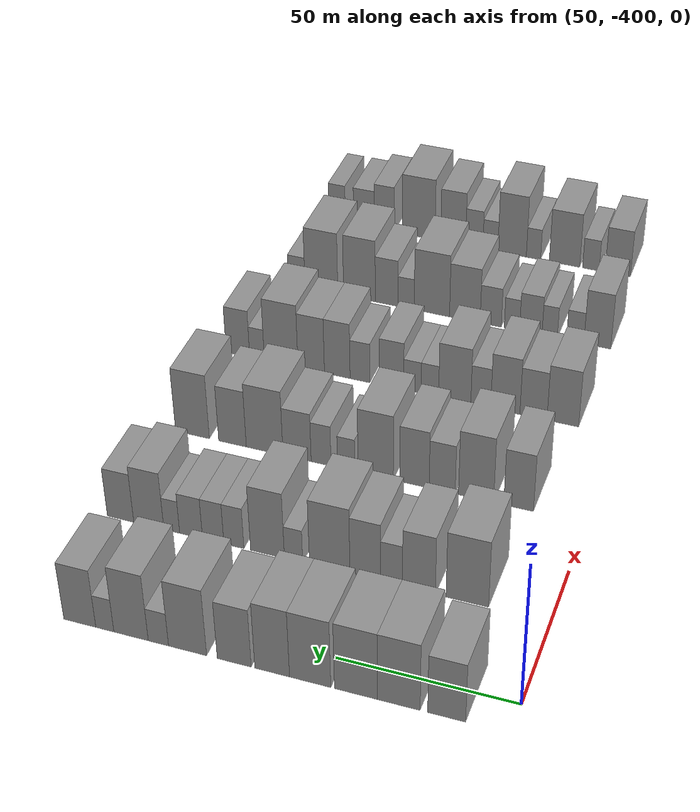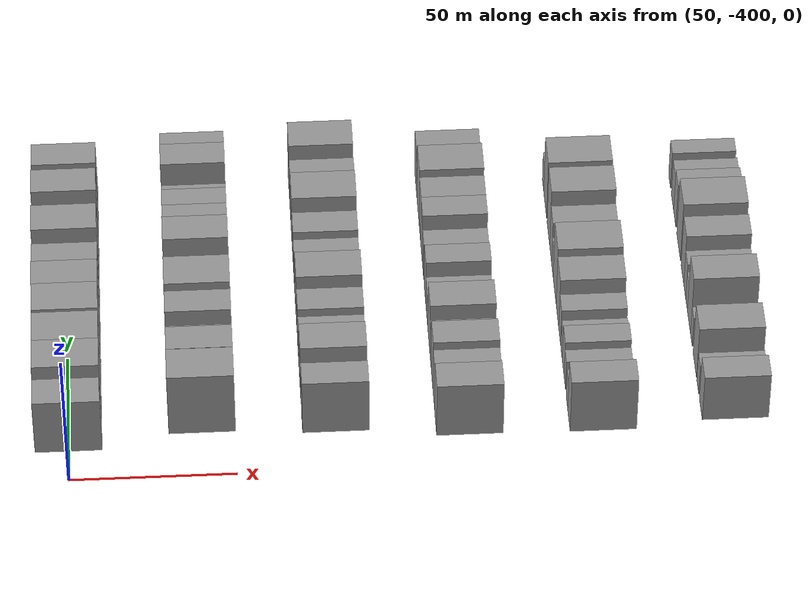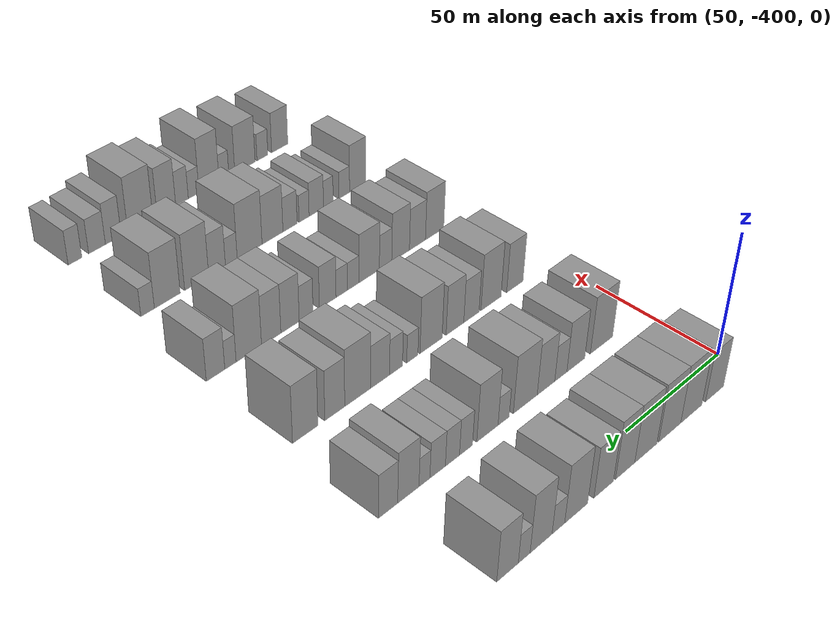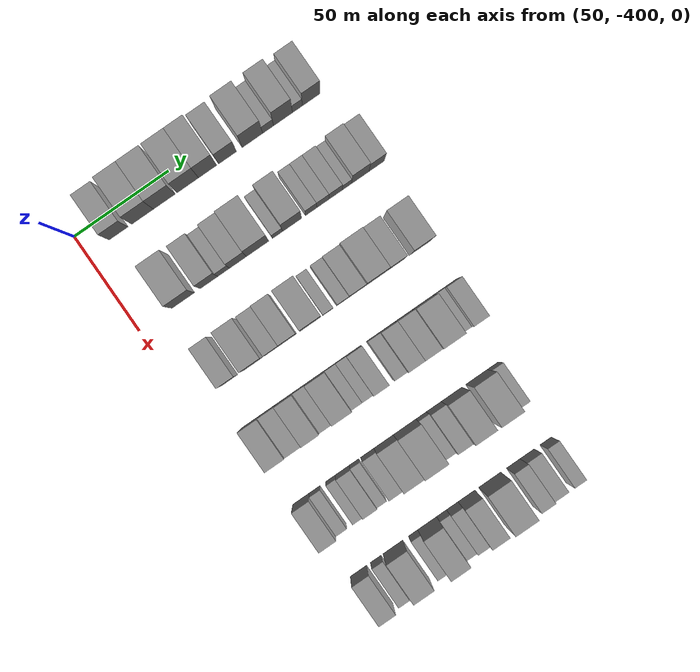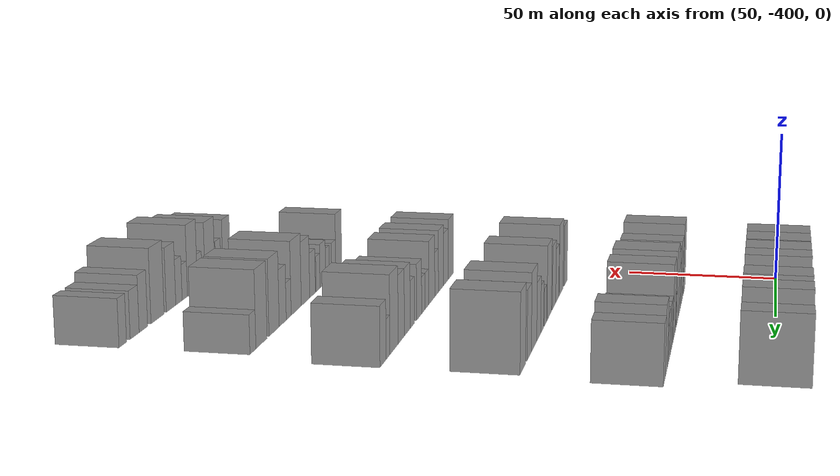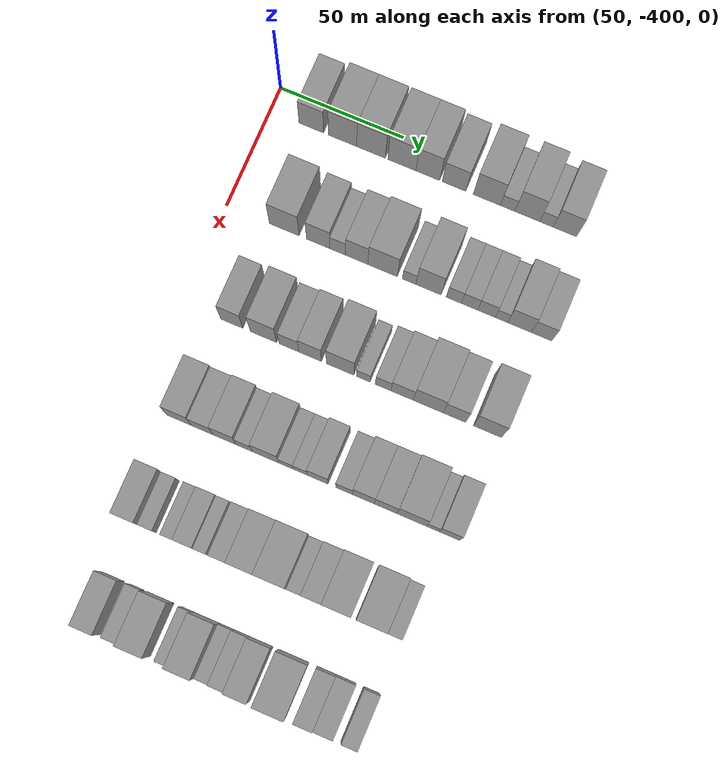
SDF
<sdf version="1.6">
 <world name="default">
  <model name="building_26">
   <static>1</static>
   <pose>50.0000 -383.2100 0 0.000000 0.000000 0.000000</pose>
   <link name="link">
    <pose>0 0 10.50 0 0 0</pose>
    <collision name="collision"><geometry><box><size>20.0000 10.0023 21.0000</size></box></geometry></collision>
    <visual name="visual">
     <cast_shadows>0</cast_shadows>
     <geometry><box><size>20.0000 10.0023 21.0000</size></box></geometry>
     <material>
      <script>
       <uri>model://grey_wall/materials/scripts</uri>
       <uri>model://grey_wall/materials/textures</uri>
       <name>vrc/grey_wall</name>
      </script>
     </material>
    </visual>
   </link>
  </model>
  <model name="building_27">
   <static>1</static>
   <pose>50.0000 -370.5010 0 0.000000 0.000000 0.000000</pose>
   <link name="link">
    <pose>0 0 12.00 0 0 0</pose>
    <collision name="collision"><geometry><box><size>20.0000 11.4157 24.0000</size></box></geometry></collision>
    <visual name="visual">
     <cast_shadows>0</cast_shadows>
     <geometry><box><size>20.0000 11.4157 24.0000</size></box></geometry>
     <material>
      <script>
       <uri>model://grey_wall/materials/scripts</uri>
       <uri>model://grey_wall/materials/textures</uri>
       <name>vrc/grey_wall</name>
      </script>
     </material>
    </visual>
   </link>
  </model>
  <model name="building_28">
   <static>1</static>
   <pose>50.0000 -358.9997 0 0.000000 0.000000 0.000000</pose>
   <link name="link">
    <pose>0 0 12.00 0 0 0</pose>
    <collision name="collision"><geometry><box><size>20.0000 11.5869 24.0000</size></box></geometry></collision>
    <visual name="visual">
     <cast_shadows>0</cast_shadows>
     <geometry><box><size>20.0000 11.5869 24.0000</size></box></geometry>
     <material>
      <script>
       <uri>model://grey_wall/materials/scripts</uri>
       <uri>model://grey_wall/materials/textures</uri>
       <name>vrc/grey_wall</name>
      </script>
     </material>
    </visual>
   </link>
  </model>
  <model name="building_29">
   <static>1</static>
   <pose>50.0000 -346.5559 0 0.000000 0.000000 0.000000</pose>
   <link name="link">
    <pose>0 0 12.00 0 0 0</pose>
    <collision name="collision"><geometry><box><size>20.0000 11.3006 24.0000</size></box></geometry></collision>
    <visual name="visual">
     <cast_shadows>0</cast_shadows>
     <geometry><box><size>20.0000 11.3006 24.0000</size></box></geometry>
     <material>
      <script>
       <uri>model://grey_wall/materials/scripts</uri>
       <uri>model://grey_wall/materials/textures</uri>
       <name>vrc/grey_wall</name>
      </script>
     </material>
    </visual>
   </link>
  </model>
  <model name="building_30">
   <static>1</static>
   <pose>50.0000 -336.1024 0 0.000000 0.000000 0.000000</pose>
   <link name="link">
    <pose>0 0 12.00 0 0 0</pose>
    <collision name="collision"><geometry><box><size>20.0000 9.6063 24.0000</size></box></geometry></collision>
    <visual name="visual">
     <cast_shadows>0</cast_shadows>
     <geometry><box><size>20.0000 9.6063 24.0000</size></box></geometry>
     <material>
      <script>
       <uri>model://grey_wall/materials/scripts</uri>
       <uri>model://grey_wall/materials/textures</uri>
       <name>vrc/grey_wall</name>
      </script>
     </material>
    </visual>
   </link>
  </model>
  <model name="building_31">
   <static>1</static>
   <pose>50.0000 -325.5463 0 0.000000 0.000000 0.000000</pose>
   <link name="link">
    <pose>0 0 10.50 0 0 0</pose>
    <collision name="collision"><geometry><box><size>20.0000 9.5060 21.0000</size></box></geometry></collision>
    <visual name="visual">
     <cast_shadows>0</cast_shadows>
     <geometry><box><size>20.0000 9.5060 21.0000</size></box></geometry>
     <material>
      <script>
       <uri>model://grey_wall/materials/scripts</uri>
       <uri>model://grey_wall/materials/textures</uri>
       <name>vrc/grey_wall</name>
      </script>
     </material>
    </visual>
   </link>
  </model>
  <model name="building_32">
   <static>1</static>
   <pose>50.0000 -312.3909 0 0.000000 0.000000 0.000000</pose>
   <link name="link">
    <pose>0 0 12.00 0 0 0</pose>
    <collision name="collision"><geometry><box><size>20.0000 10.8048 24.0000</size></box></geometry></collision>
    <visual name="visual">
     <cast_shadows>0</cast_shadows>
     <geometry><box><size>20.0000 10.8048 24.0000</size></box></geometry>
     <material>
      <script>
       <uri>model://grey_wall/materials/scripts</uri>
       <uri>model://grey_wall/materials/textures</uri>
       <name>vrc/grey_wall</name>
      </script>
     </material>
    </visual>
   </link>
  </model>
  <model name="building_33">
   <static>1</static>
   <pose>50.0000 -304.0890 0 0.000000 0.000000 0.000000</pose>
   <link name="link">
    <pose>0 0 6.00 0 0 0</pose>
    <collision name="collision"><geometry><box><size>20.0000 5.7989 12.0000</size></box></geometry></collision>
    <visual name="visual">
     <cast_shadows>0</cast_shadows>
     <geometry><box><size>20.0000 5.7989 12.0000</size></box></geometry>
     <material>
      <script>
       <uri>model://grey_wall/materials/scripts</uri>
       <uri>model://grey_wall/materials/textures</uri>
       <name>vrc/grey_wall</name>
      </script>
     </material>
    </visual>
   </link>
  </model>
  <model name="building_34">
   <static>1</static>
   <pose>50.0000 -296.2287 0 0.000000 0.000000 0.000000</pose>
   <link name="link">
    <pose>0 0 12.00 0 0 0</pose>
    <collision name="collision"><geometry><box><size>20.0000 9.9216 24.0000</size></box></geometry></collision>
    <visual name="visual">
     <cast_shadows>0</cast_shadows>
     <geometry><box><size>20.0000 9.9216 24.0000</size></box></geometry>
     <material>
      <script>
       <uri>model://grey_wall/materials/scripts</uri>
       <uri>model://grey_wall/materials/textures</uri>
       <name>vrc/grey_wall</name>
      </script>
     </material>
    </visual>
   </link>
  </model>
  <model name="building_35">
   <static>1</static>
   <pose>50.0000 -288.6441 0 0.000000 0.000000 0.000000</pose>
   <link name="link">
    <pose>0 0 6.00 0 0 0</pose>
    <collision name="collision"><geometry><box><size>20.0000 5.2477 12.0000</size></box></geometry></collision>
    <visual name="visual">
     <cast_shadows>0</cast_shadows>
     <geometry><box><size>20.0000 5.2477 12.0000</size></box></geometry>
     <material>
      <script>
       <uri>model://grey_wall/materials/scripts</uri>
       <uri>model://grey_wall/materials/textures</uri>
       <name>vrc/grey_wall</name>
      </script>
     </material>
    </visual>
   </link>
  </model>
  <model name="building_36">
   <static>1</static>
   <pose>50.0000 -281.3469 0 0.000000 0.000000 0.000000</pose>
   <link name="link">
    <pose>0 0 10.50 0 0 0</pose>
    <collision name="collision"><geometry><box><size>20.0000 9.3467 21.0000</size></box></geometry></collision>
    <visual name="visual">
     <cast_shadows>0</cast_shadows>
     <geometry><box><size>20.0000 9.3467 21.0000</size></box></geometry>
     <material>
      <script>
       <uri>model://grey_wall/materials/scripts</uri>
       <uri>model://grey_wall/materials/textures</uri>
       <name>vrc/grey_wall</name>
      </script>
     </material>
    </visual>
   </link>
  </model>
  <model name="building_163">
   <static>1</static>
   <pose>90.0000 -376.7225 0 0.000000 0.000000 0.000000</pose>
   <link name="link">
    <pose>0 0 12.00 0 0 0</pose>
    <collision name="collision"><geometry><box><size>20.0000 11.9262 24.0000</size></box></geometry></collision>
    <visual name="visual">
     <cast_shadows>0</cast_shadows>
     <geometry><box><size>20.0000 11.9262 24.0000</size></box></geometry>
     <material>
      <script>
       <uri>model://grey_wall/materials/scripts</uri>
       <uri>model://grey_wall/materials/textures</uri>
       <name>vrc/grey_wall</name>
      </script>
     </material>
    </visual>
   </link>
  </model>
  <model name="building_164">
   <static>1</static>
   <pose>90.0000 -363.0831 0 0.000000 0.000000 0.000000</pose>
   <link name="link">
    <pose>0 0 10.50 0 0 0</pose>
    <collision name="collision"><geometry><box><size>20.0000 9.3526 21.0000</size></box></geometry></collision>
    <visual name="visual">
     <cast_shadows>0</cast_shadows>
     <geometry><box><size>20.0000 9.3526 21.0000</size></box></geometry>
     <material>
      <script>
       <uri>model://grey_wall/materials/scripts</uri>
       <uri>model://grey_wall/materials/textures</uri>
       <name>vrc/grey_wall</name>
      </script>
     </material>
    </visual>
   </link>
  </model>
  <model name="building_165">
   <static>1</static>
   <pose>90.0000 -355.2886 0 0.000000 0.000000 0.000000</pose>
   <link name="link">
    <pose>0 0 7.50 0 0 0</pose>
    <collision name="collision"><geometry><box><size>20.0000 6.2364 15.0000</size></box></geometry></collision>
    <visual name="visual">
     <cast_shadows>0</cast_shadows>
     <geometry><box><size>20.0000 6.2364 15.0000</size></box></geometry>
     <material>
      <script>
       <uri>model://grey_wall/materials/scripts</uri>
       <uri>model://grey_wall/materials/textures</uri>
       <name>vrc/grey_wall</name>
      </script>
     </material>
    </visual>
   </link>
  </model>
  <model name="building_166">
   <static>1</static>
   <pose>90.0000 -347.7368 0 0.000000 0.000000 0.000000</pose>
   <link name="link">
    <pose>0 0 10.50 0 0 0</pose>
    <collision name="collision"><geometry><box><size>20.0000 8.8673 21.0000</size></box></geometry></collision>
    <visual name="visual">
     <cast_shadows>0</cast_shadows>
     <geometry><box><size>20.0000 8.8673 21.0000</size></box></geometry>
     <material>
      <script>
       <uri>model://grey_wall/materials/scripts</uri>
       <uri>model://grey_wall/materials/textures</uri>
       <name>vrc/grey_wall</name>
      </script>
     </material>
    </visual>
   </link>
  </model>
  <model name="building_167">
   <static>1</static>
   <pose>90.0000 -337.4164 0 0.000000 0.000000 0.000000</pose>
   <link name="link">
    <pose>0 0 12.00 0 0 0</pose>
    <collision name="collision"><geometry><box><size>20.0000 11.7734 24.0000</size></box></geometry></collision>
    <visual name="visual">
     <cast_shadows>0</cast_shadows>
     <geometry><box><size>20.0000 11.7734 24.0000</size></box></geometry>
     <material>
      <script>
       <uri>model://grey_wall/materials/scripts</uri>
       <uri>model://grey_wall/materials/textures</uri>
       <name>vrc/grey_wall</name>
      </script>
     </material>
    </visual>
   </link>
  </model>
  <model name="building_168">
   <static>1</static>
   <pose>90.0000 -326.8389 0 0.000000 0.000000 0.000000</pose>
   <link name="link">
    <pose>0 0 6.00 0 0 0</pose>
    <collision name="collision"><geometry><box><size>20.0000 5.3818 12.0000</size></box></geometry></collision>
    <visual name="visual">
     <cast_shadows>0</cast_shadows>
     <geometry><box><size>20.0000 5.3818 12.0000</size></box></geometry>
     <material>
      <script>
       <uri>model://grey_wall/materials/scripts</uri>
       <uri>model://grey_wall/materials/textures</uri>
       <name>vrc/grey_wall</name>
      </script>
     </material>
    </visual>
   </link>
  </model>
  <model name="building_169">
   <static>1</static>
   <pose>90.0000 -319.1315 0 0.000000 0.000000 0.000000</pose>
   <link name="link">
    <pose>0 0 12.00 0 0 0</pose>
    <collision name="collision"><geometry><box><size>20.0000 10.0330 24.0000</size></box></geometry></collision>
    <visual name="visual">
     <cast_shadows>0</cast_shadows>
     <geometry><box><size>20.0000 10.0330 24.0000</size></box></geometry>
     <material>
      <script>
       <uri>model://grey_wall/materials/scripts</uri>
       <uri>model://grey_wall/materials/textures</uri>
       <name>vrc/grey_wall</name>
      </script>
     </material>
    </visual>
   </link>
  </model>
  <model name="building_170">
   <static>1</static>
   <pose>90.0000 -309.1130 0 0.000000 0.000000 0.000000</pose>
   <link name="link">
    <pose>0 0 7.50 0 0 0</pose>
    <collision name="collision"><geometry><box><size>20.0000 6.0039 15.0000</size></box></geometry></collision>
    <visual name="visual">
     <cast_shadows>0</cast_shadows>
     <geometry><box><size>20.0000 6.0039 15.0000</size></box></geometry>
     <material>
      <script>
       <uri>model://grey_wall/materials/scripts</uri>
       <uri>model://grey_wall/materials/textures</uri>
       <name>vrc/grey_wall</name>
      </script>
     </material>
    </visual>
   </link>
  </model>
  <model name="building_171">
   <static>1</static>
   <pose>90.0000 -302.8953 0 0.000000 0.000000 0.000000</pose>
   <link name="link">
    <pose>0 0 7.50 0 0 0</pose>
    <collision name="collision"><geometry><box><size>20.0000 6.4315 15.0000</size></box></geometry></collision>
    <visual name="visual">
     <cast_shadows>0</cast_shadows>
     <geometry><box><size>20.0000 6.4315 15.0000</size></box></geometry>
     <material>
      <script>
       <uri>model://grey_wall/materials/scripts</uri>
       <uri>model://grey_wall/materials/textures</uri>
       <name>vrc/grey_wall</name>
      </script>
     </material>
    </visual>
   </link>
  </model>
  <model name="building_172">
   <static>1</static>
   <pose>90.0000 -296.2111 0 0.000000 0.000000 0.000000</pose>
   <link name="link">
    <pose>0 0 7.50 0 0 0</pose>
    <collision name="collision"><geometry><box><size>20.0000 6.9369 15.0000</size></box></geometry></collision>
    <visual name="visual">
     <cast_shadows>0</cast_shadows>
     <geometry><box><size>20.0000 6.9369 15.0000</size></box></geometry>
     <material>
      <script>
       <uri>model://grey_wall/materials/scripts</uri>
       <uri>model://grey_wall/materials/textures</uri>
       <name>vrc/grey_wall</name>
      </script>
     </material>
    </visual>
   </link>
  </model>
  <model name="building_173">
   <static>1</static>
   <pose>90.0000 -290.3276 0 0.000000 0.000000 0.000000</pose>
   <link name="link">
    <pose>0 0 6.00 0 0 0</pose>
    <collision name="collision"><geometry><box><size>20.0000 4.8303 12.0000</size></box></geometry></collision>
    <visual name="visual">
     <cast_shadows>0</cast_shadows>
     <geometry><box><size>20.0000 4.8303 12.0000</size></box></geometry>
     <material>
      <script>
       <uri>model://grey_wall/materials/scripts</uri>
       <uri>model://grey_wall/materials/textures</uri>
       <name>vrc/grey_wall</name>
      </script>
     </material>
    </visual>
   </link>
  </model>
  <model name="building_174">
   <static>1</static>
   <pose>90.0000 -283.2886 0 0.000000 0.000000 0.000000</pose>
   <link name="link">
    <pose>0 0 10.50 0 0 0</pose>
    <collision name="collision"><geometry><box><size>20.0000 9.2477 21.0000</size></box></geometry></collision>
    <visual name="visual">
     <cast_shadows>0</cast_shadows>
     <geometry><box><size>20.0000 9.2477 21.0000</size></box></geometry>
     <material>
      <script>
       <uri>model://grey_wall/materials/scripts</uri>
       <uri>model://grey_wall/materials/textures</uri>
       <name>vrc/grey_wall</name>
      </script>
     </material>
    </visual>
   </link>
  </model>
  <model name="building_175">
   <static>1</static>
   <pose>90.0000 -274.5964 0 0.000000 0.000000 0.000000</pose>
   <link name="link">
    <pose>0 0 9.00 0 0 0</pose>
    <collision name="collision"><geometry><box><size>20.0000 8.1366 18.0000</size></box></geometry></collision>
    <visual name="visual">
     <cast_shadows>0</cast_shadows>
     <geometry><box><size>20.0000 8.1366 18.0000</size></box></geometry>
     <material>
      <script>
       <uri>model://grey_wall/materials/scripts</uri>
       <uri>model://grey_wall/materials/textures</uri>
       <name>vrc/grey_wall</name>
      </script>
     </material>
    </visual>
   </link>
  </model>
  <model name="building_305">
   <static>1</static>
   <pose>130.0000 -380.0397 0 0.000000 0.000000 0.000000</pose>
   <link name="link">
    <pose>0 0 10.50 0 0 0</pose>
    <collision name="collision"><geometry><box><size>20.0000 8.7486 21.0000</size></box></geometry></collision>
    <visual name="visual">
     <cast_shadows>0</cast_shadows>
     <geometry><box><size>20.0000 8.7486 21.0000</size></box></geometry>
     <material>
      <script>
       <uri>model://grey_wall/materials/scripts</uri>
       <uri>model://grey_wall/materials/textures</uri>
       <name>vrc/grey_wall</name>
      </script>
     </material>
    </visual>
   </link>
  </model>
  <model name="building_306">
   <static>1</static>
   <pose>130.0000 -367.4345 0 0.000000 0.000000 0.000000</pose>
   <link name="link">
    <pose>0 0 12.00 0 0 0</pose>
    <collision name="collision"><geometry><box><size>20.0000 10.4618 24.0000</size></box></geometry></collision>
    <visual name="visual">
     <cast_shadows>0</cast_shadows>
     <geometry><box><size>20.0000 10.4618 24.0000</size></box></geometry>
     <material>
      <script>
       <uri>model://grey_wall/materials/scripts</uri>
       <uri>model://grey_wall/materials/textures</uri>
       <name>vrc/grey_wall</name>
      </script>
     </material>
    </visual>
   </link>
  </model>
  <model name="building_307">
   <static>1</static>
   <pose>130.0000 -357.2949 0 0.000000 0.000000 0.000000</pose>
   <link name="link">
    <pose>0 0 9.00 0 0 0</pose>
    <collision name="collision"><geometry><box><size>20.0000 7.8173 18.0000</size></box></geometry></collision>
    <visual name="visual">
     <cast_shadows>0</cast_shadows>
     <geometry><box><size>20.0000 7.8173 18.0000</size></box></geometry>
     <material>
      <script>
       <uri>model://grey_wall/materials/scripts</uri>
       <uri>model://grey_wall/materials/textures</uri>
       <name>vrc/grey_wall</name>
      </script>
     </material>
    </visual>
   </link>
  </model>
  <model name="building_308">
   <static>1</static>
   <pose>130.0000 -348.9485 0 0.000000 0.000000 0.000000</pose>
   <link name="link">
    <pose>0 0 10.50 0 0 0</pose>
    <collision name="collision"><geometry><box><size>20.0000 8.8755 21.0000</size></box></geometry></collision>
    <visual name="visual">
     <cast_shadows>0</cast_shadows>
     <geometry><box><size>20.0000 8.8755 21.0000</size></box></geometry>
     <material>
      <script>
       <uri>model://grey_wall/materials/scripts</uri>
       <uri>model://grey_wall/materials/textures</uri>
       <name>vrc/grey_wall</name>
      </script>
     </material>
    </visual>
   </link>
  </model>
  <model name="building_309">
   <static>1</static>
   <pose>130.0000 -337.1103 0 0.000000 0.000000 0.000000</pose>
   <link name="link">
    <pose>0 0 12.00 0 0 0</pose>
    <collision name="collision"><geometry><box><size>20.0000 10.8010 24.0000</size></box></geometry></collision>
    <visual name="visual">
     <cast_shadows>0</cast_shadows>
     <geometry><box><size>20.0000 10.8010 24.0000</size></box></geometry>
     <material>
      <script>
       <uri>model://grey_wall/materials/scripts</uri>
       <uri>model://grey_wall/materials/textures</uri>
       <name>vrc/grey_wall</name>
      </script>
     </material>
    </visual>
   </link>
  </model>
  <model name="building_310">
   <static>1</static>
   <pose>130.0000 -328.0255 0 0.000000 0.000000 0.000000</pose>
   <link name="link">
    <pose>0 0 6.00 0 0 0</pose>
    <collision name="collision"><geometry><box><size>20.0000 5.3686 12.0000</size></box></geometry></collision>
    <visual name="visual">
     <cast_shadows>0</cast_shadows>
     <geometry><box><size>20.0000 5.3686 12.0000</size></box></geometry>
     <material>
      <script>
       <uri>model://grey_wall/materials/scripts</uri>
       <uri>model://grey_wall/materials/textures</uri>
       <name>vrc/grey_wall</name>
      </script>
     </material>
    </visual>
   </link>
  </model>
  <model name="building_311">
   <static>1</static>
   <pose>130.0000 -320.2541 0 0.000000 0.000000 0.000000</pose>
   <link name="link">
    <pose>0 0 7.50 0 0 0</pose>
    <collision name="collision"><geometry><box><size>20.0000 6.1741 15.0000</size></box></geometry></collision>
    <visual name="visual">
     <cast_shadows>0</cast_shadows>
     <geometry><box><size>20.0000 6.1741 15.0000</size></box></geometry>
     <material>
      <script>
       <uri>model://grey_wall/materials/scripts</uri>
       <uri>model://grey_wall/materials/textures</uri>
       <name>vrc/grey_wall</name>
      </script>
     </material>
    </visual>
   </link>
  </model>
  <model name="building_312">
   <static>1</static>
   <pose>130.0000 -312.7483 0 0.000000 0.000000 0.000000</pose>
   <link name="link">
    <pose>0 0 9.00 0 0 0</pose>
    <collision name="collision"><geometry><box><size>20.0000 8.8376 18.0000</size></box></geometry></collision>
    <visual name="visual">
     <cast_shadows>0</cast_shadows>
     <geometry><box><size>20.0000 8.8376 18.0000</size></box></geometry>
     <material>
      <script>
       <uri>model://grey_wall/materials/scripts</uri>
       <uri>model://grey_wall/materials/textures</uri>
       <name>vrc/grey_wall</name>
      </script>
     </material>
    </visual>
   </link>
  </model>
  <model name="building_313">
   <static>1</static>
   <pose>130.0000 -302.5245 0 0.000000 0.000000 0.000000</pose>
   <link name="link">
    <pose>0 0 12.00 0 0 0</pose>
    <collision name="collision"><geometry><box><size>20.0000 11.6098 24.0000</size></box></geometry></collision>
    <visual name="visual">
     <cast_shadows>0</cast_shadows>
     <geometry><box><size>20.0000 11.6098 24.0000</size></box></geometry>
     <material>
      <script>
       <uri>model://grey_wall/materials/scripts</uri>
       <uri>model://grey_wall/materials/textures</uri>
       <name>vrc/grey_wall</name>
      </script>
     </material>
    </visual>
   </link>
  </model>
  <model name="building_314">
   <static>1</static>
   <pose>130.0000 -292.3174 0 0.000000 0.000000 0.000000</pose>
   <link name="link">
    <pose>0 0 10.50 0 0 0</pose>
    <collision name="collision"><geometry><box><size>20.0000 8.8043 21.0000</size></box></geometry></collision>
    <visual name="visual">
     <cast_shadows>0</cast_shadows>
     <geometry><box><size>20.0000 8.8043 21.0000</size></box></geometry>
     <material>
      <script>
       <uri>model://grey_wall/materials/scripts</uri>
       <uri>model://grey_wall/materials/textures</uri>
       <name>vrc/grey_wall</name>
      </script>
     </material>
    </visual>
   </link>
  </model>
  <model name="building_315">
   <static>1</static>
   <pose>130.0000 -279.4667 0 0.000000 0.000000 0.000000</pose>
   <link name="link">
    <pose>0 0 12.00 0 0 0</pose>
    <collision name="collision"><geometry><box><size>20.0000 10.8972 24.0000</size></box></geometry></collision>
    <visual name="visual">
     <cast_shadows>0</cast_shadows>
     <geometry><box><size>20.0000 10.8972 24.0000</size></box></geometry>
     <material>
      <script>
       <uri>model://grey_wall/materials/scripts</uri>
       <uri>model://grey_wall/materials/textures</uri>
       <name>vrc/grey_wall</name>
      </script>
     </material>
    </visual>
   </link>
  </model>
  <model name="building_441">
   <static>1</static>
   <pose>170.0000 -382.8192 0 0.000000 0.000000 0.000000</pose>
   <link name="link">
    <pose>0 0 10.50 0 0 0</pose>
    <collision name="collision"><geometry><box><size>20.0000 9.7918 21.0000</size></box></geometry></collision>
    <visual name="visual">
     <cast_shadows>0</cast_shadows>
     <geometry><box><size>20.0000 9.7918 21.0000</size></box></geometry>
     <material>
      <script>
       <uri>model://grey_wall/materials/scripts</uri>
       <uri>model://grey_wall/materials/textures</uri>
       <name>vrc/grey_wall</name>
      </script>
     </material>
    </visual>
   </link>
  </model>
  <model name="building_442">
   <static>1</static>
   <pose>170.0000 -373.6999 0 0.000000 0.000000 0.000000</pose>
   <link name="link">
    <pose>0 0 9.00 0 0 0</pose>
    <collision name="collision"><geometry><box><size>20.0000 8.4469 18.0000</size></box></geometry></collision>
    <visual name="visual">
     <cast_shadows>0</cast_shadows>
     <geometry><box><size>20.0000 8.4469 18.0000</size></box></geometry>
     <material>
      <script>
       <uri>model://grey_wall/materials/scripts</uri>
       <uri>model://grey_wall/materials/textures</uri>
       <name>vrc/grey_wall</name>
      </script>
     </material>
    </visual>
   </link>
  </model>
  <model name="building_443">
   <static>1</static>
   <pose>170.0000 -364.9078 0 0.000000 0.000000 0.000000</pose>
   <link name="link">
    <pose>0 0 10.50 0 0 0</pose>
    <collision name="collision"><geometry><box><size>20.0000 9.1371 21.0000</size></box></geometry></collision>
    <visual name="visual">
     <cast_shadows>0</cast_shadows>
     <geometry><box><size>20.0000 9.1371 21.0000</size></box></geometry>
     <material>
      <script>
       <uri>model://grey_wall/materials/scripts</uri>
       <uri>model://grey_wall/materials/textures</uri>
       <name>vrc/grey_wall</name>
      </script>
     </material>
    </visual>
   </link>
  </model>
  <model name="building_444">
   <static>1</static>
   <pose>170.0000 -357.1944 0 0.000000 0.000000 0.000000</pose>
   <link name="link">
    <pose>0 0 7.50 0 0 0</pose>
    <collision name="collision"><geometry><box><size>20.0000 6.2899 15.0000</size></box></geometry></collision>
    <visual name="visual">
     <cast_shadows>0</cast_shadows>
     <geometry><box><size>20.0000 6.2899 15.0000</size></box></geometry>
     <material>
      <script>
       <uri>model://grey_wall/materials/scripts</uri>
       <uri>model://grey_wall/materials/textures</uri>
       <name>vrc/grey_wall</name>
      </script>
     </material>
    </visual>
   </link>
  </model>
  <model name="building_445">
   <static>1</static>
   <pose>170.0000 -348.9274 0 0.000000 0.000000 0.000000</pose>
   <link name="link">
    <pose>0 0 10.50 0 0 0</pose>
    <collision name="collision"><geometry><box><size>20.0000 10.2440 21.0000</size></box></geometry></collision>
    <visual name="visual">
     <cast_shadows>0</cast_shadows>
     <geometry><box><size>20.0000 10.2440 21.0000</size></box></geometry>
     <material>
      <script>
       <uri>model://grey_wall/materials/scripts</uri>
       <uri>model://grey_wall/materials/textures</uri>
       <name>vrc/grey_wall</name>
      </script>
     </material>
    </visual>
   </link>
  </model>
  <model name="building_446">
   <static>1</static>
   <pose>170.0000 -340.9810 0 0.000000 0.000000 0.000000</pose>
   <link name="link">
    <pose>0 0 6.00 0 0 0</pose>
    <collision name="collision"><geometry><box><size>20.0000 5.6489 12.0000</size></box></geometry></collision>
    <visual name="visual">
     <cast_shadows>0</cast_shadows>
     <geometry><box><size>20.0000 5.6489 12.0000</size></box></geometry>
     <material>
      <script>
       <uri>model://grey_wall/materials/scripts</uri>
       <uri>model://grey_wall/materials/textures</uri>
       <name>vrc/grey_wall</name>
      </script>
     </material>
    </visual>
   </link>
  </model>
  <model name="building_447">
   <static>1</static>
   <pose>170.0000 -335.3822 0 0.000000 0.000000 0.000000</pose>
   <link name="link">
    <pose>0 0 6.00 0 0 0</pose>
    <collision name="collision"><geometry><box><size>20.0000 5.5487 12.0000</size></box></geometry></collision>
    <visual name="visual">
     <cast_shadows>0</cast_shadows>
     <geometry><box><size>20.0000 5.5487 12.0000</size></box></geometry>
     <material>
      <script>
       <uri>model://grey_wall/materials/scripts</uri>
       <uri>model://grey_wall/materials/textures</uri>
       <name>vrc/grey_wall</name>
      </script>
     </material>
    </visual>
   </link>
  </model>
  <model name="building_448">
   <static>1</static>
   <pose>170.0000 -328.6248 0 0.000000 0.000000 0.000000</pose>
   <link name="link">
    <pose>0 0 9.00 0 0 0</pose>
    <collision name="collision"><geometry><box><size>20.0000 7.9662 18.0000</size></box></geometry></collision>
    <visual name="visual">
     <cast_shadows>0</cast_shadows>
     <geometry><box><size>20.0000 7.9662 18.0000</size></box></geometry>
     <material>
      <script>
       <uri>model://grey_wall/materials/scripts</uri>
       <uri>model://grey_wall/materials/textures</uri>
       <name>vrc/grey_wall</name>
      </script>
     </material>
    </visual>
   </link>
  </model>
  <model name="building_449">
   <static>1</static>
   <pose>170.0000 -318.3990 0 0.000000 0.000000 0.000000</pose>
   <link name="link">
    <pose>0 0 7.50 0 0 0</pose>
    <collision name="collision"><geometry><box><size>20.0000 6.4855 15.0000</size></box></geometry></collision>
    <visual name="visual">
     <cast_shadows>0</cast_shadows>
     <geometry><box><size>20.0000 6.4855 15.0000</size></box></geometry>
     <material>
      <script>
       <uri>model://grey_wall/materials/scripts</uri>
       <uri>model://grey_wall/materials/textures</uri>
       <name>vrc/grey_wall</name>
      </script>
     </material>
    </visual>
   </link>
  </model>
  <model name="building_450">
   <static>1</static>
   <pose>170.0000 -310.9374 0 0.000000 0.000000 0.000000</pose>
   <link name="link">
    <pose>0 0 10.50 0 0 0</pose>
    <collision name="collision"><geometry><box><size>20.0000 8.4378 21.0000</size></box></geometry></collision>
    <visual name="visual">
     <cast_shadows>0</cast_shadows>
     <geometry><box><size>20.0000 8.4378 21.0000</size></box></geometry>
     <material>
      <script>
       <uri>model://grey_wall/materials/scripts</uri>
       <uri>model://grey_wall/materials/textures</uri>
       <name>vrc/grey_wall</name>
      </script>
     </material>
    </visual>
   </link>
  </model>
  <model name="building_451">
   <static>1</static>
   <pose>170.0000 -302.3357 0 0.000000 0.000000 0.000000</pose>
   <link name="link">
    <pose>0 0 10.50 0 0 0</pose>
    <collision name="collision"><geometry><box><size>20.0000 8.7654 21.0000</size></box></geometry></collision>
    <visual name="visual">
     <cast_shadows>0</cast_shadows>
     <geometry><box><size>20.0000 8.7654 21.0000</size></box></geometry>
     <material>
      <script>
       <uri>model://grey_wall/materials/scripts</uri>
       <uri>model://grey_wall/materials/textures</uri>
       <name>vrc/grey_wall</name>
      </script>
     </material>
    </visual>
   </link>
  </model>
  <model name="building_452">
   <static>1</static>
   <pose>170.0000 -292.3222 0 0.000000 0.000000 0.000000</pose>
   <link name="link">
    <pose>0 0 12.00 0 0 0</pose>
    <collision name="collision"><geometry><box><size>20.0000 11.2615 24.0000</size></box></geometry></collision>
    <visual name="visual">
     <cast_shadows>0</cast_shadows>
     <geometry><box><size>20.0000 11.2615 24.0000</size></box></geometry>
     <material>
      <script>
       <uri>model://grey_wall/materials/scripts</uri>
       <uri>model://grey_wall/materials/textures</uri>
       <name>vrc/grey_wall</name>
      </script>
     </material>
    </visual>
   </link>
  </model>
  <model name="building_453">
   <static>1</static>
   <pose>170.0000 -284.2298 0 0.000000 0.000000 0.000000</pose>
   <link name="link">
    <pose>0 0 6.00 0 0 0</pose>
    <collision name="collision"><geometry><box><size>20.0000 4.9233 12.0000</size></box></geometry></collision>
    <visual name="visual">
     <cast_shadows>0</cast_shadows>
     <geometry><box><size>20.0000 4.9233 12.0000</size></box></geometry>
     <material>
      <script>
       <uri>model://grey_wall/materials/scripts</uri>
       <uri>model://grey_wall/materials/textures</uri>
       <name>vrc/grey_wall</name>
      </script>
     </material>
    </visual>
   </link>
  </model>
  <model name="building_454">
   <static>1</static>
   <pose>170.0000 -277.8054 0 0.000000 0.000000 0.000000</pose>
   <link name="link">
    <pose>0 0 9.00 0 0 0</pose>
    <collision name="collision"><geometry><box><size>20.0000 7.9255 18.0000</size></box></geometry></collision>
    <visual name="visual">
     <cast_shadows>0</cast_shadows>
     <geometry><box><size>20.0000 7.9255 18.0000</size></box></geometry>
     <material>
      <script>
       <uri>model://grey_wall/materials/scripts</uri>
       <uri>model://grey_wall/materials/textures</uri>
       <name>vrc/grey_wall</name>
      </script>
     </material>
    </visual>
   </link>
  </model>
  <model name="building_568">
   <static>1</static>
   <pose>210.0000 -383.8613 0 0.000000 0.000000 0.000000</pose>
   <link name="link">
    <pose>0 0 10.50 0 0 0</pose>
    <collision name="collision"><geometry><box><size>20.0000 8.7128 21.0000</size></box></geometry></collision>
    <visual name="visual">
     <cast_shadows>0</cast_shadows>
     <geometry><box><size>20.0000 8.7128 21.0000</size></box></geometry>
     <material>
      <script>
       <uri>model://grey_wall/materials/scripts</uri>
       <uri>model://grey_wall/materials/textures</uri>
       <name>vrc/grey_wall</name>
      </script>
     </material>
    </visual>
   </link>
  </model>
  <model name="building_569">
   <static>1</static>
   <pose>210.0000 -376.6876 0 0.000000 0.000000 0.000000</pose>
   <link name="link">
    <pose>0 0 6.00 0 0 0</pose>
    <collision name="collision"><geometry><box><size>20.0000 5.6347 12.0000</size></box></geometry></collision>
    <visual name="visual">
     <cast_shadows>0</cast_shadows>
     <geometry><box><size>20.0000 5.6347 12.0000</size></box></geometry>
     <material>
      <script>
       <uri>model://grey_wall/materials/scripts</uri>
       <uri>model://grey_wall/materials/textures</uri>
       <name>vrc/grey_wall</name>
      </script>
     </material>
    </visual>
   </link>
  </model>
  <model name="building_570">
   <static>1</static>
   <pose>210.0000 -368.3581 0 0.000000 0.000000 0.000000</pose>
   <link name="link">
    <pose>0 0 6.00 0 0 0</pose>
    <collision name="collision"><geometry><box><size>20.0000 5.0243 12.0000</size></box></geometry></collision>
    <visual name="visual">
     <cast_shadows>0</cast_shadows>
     <geometry><box><size>20.0000 5.0243 12.0000</size></box></geometry>
     <material>
      <script>
       <uri>model://grey_wall/materials/scripts</uri>
       <uri>model://grey_wall/materials/textures</uri>
       <name>vrc/grey_wall</name>
      </script>
     </material>
    </visual>
   </link>
  </model>
  <model name="building_571">
   <static>1</static>
   <pose>210.0000 -362.1514 0 0.000000 0.000000 0.000000</pose>
   <link name="link">
    <pose>0 0 7.50 0 0 0</pose>
    <collision name="collision"><geometry><box><size>20.0000 7.3891 15.0000</size></box></geometry></collision>
    <visual name="visual">
     <cast_shadows>0</cast_shadows>
     <geometry><box><size>20.0000 7.3891 15.0000</size></box></geometry>
     <material>
      <script>
       <uri>model://grey_wall/materials/scripts</uri>
       <uri>model://grey_wall/materials/textures</uri>
       <name>vrc/grey_wall</name>
      </script>
     </material>
    </visual>
   </link>
  </model>
  <model name="building_572">
   <static>1</static>
   <pose>210.0000 -355.9201 0 0.000000 0.000000 0.000000</pose>
   <link name="link">
    <pose>0 0 6.00 0 0 0</pose>
    <collision name="collision"><geometry><box><size>20.0000 5.0735 12.0000</size></box></geometry></collision>
    <visual name="visual">
     <cast_shadows>0</cast_shadows>
     <geometry><box><size>20.0000 5.0735 12.0000</size></box></geometry>
     <material>
      <script>
       <uri>model://grey_wall/materials/scripts</uri>
       <uri>model://grey_wall/materials/textures</uri>
       <name>vrc/grey_wall</name>
      </script>
     </material>
    </visual>
   </link>
  </model>
  <model name="building_573">
   <static>1</static>
   <pose>210.0000 -348.8555 0 0.000000 0.000000 0.000000</pose>
   <link name="link">
    <pose>0 0 7.50 0 0 0</pose>
    <collision name="collision"><geometry><box><size>20.0000 7.0557 15.0000</size></box></geometry></collision>
    <visual name="visual">
     <cast_shadows>0</cast_shadows>
     <geometry><box><size>20.0000 7.0557 15.0000</size></box></geometry>
     <material>
      <script>
       <uri>model://grey_wall/materials/scripts</uri>
       <uri>model://grey_wall/materials/textures</uri>
       <name>vrc/grey_wall</name>
      </script>
     </material>
    </visual>
   </link>
  </model>
  <model name="building_574">
   <static>1</static>
   <pose>210.0000 -340.1937 0 0.000000 0.000000 0.000000</pose>
   <link name="link">
    <pose>0 0 10.50 0 0 0</pose>
    <collision name="collision"><geometry><box><size>20.0000 10.2680 21.0000</size></box></geometry></collision>
    <visual name="visual">
     <cast_shadows>0</cast_shadows>
     <geometry><box><size>20.0000 10.2680 21.0000</size></box></geometry>
     <material>
      <script>
       <uri>model://grey_wall/materials/scripts</uri>
       <uri>model://grey_wall/materials/textures</uri>
       <name>vrc/grey_wall</name>
      </script>
     </material>
    </visual>
   </link>
  </model>
  <model name="building_575">
   <static>1</static>
   <pose>210.0000 -329.0864 0 0.000000 0.000000 0.000000</pose>
   <link name="link">
    <pose>0 0 12.00 0 0 0</pose>
    <collision name="collision"><geometry><box><size>20.0000 11.9466 24.0000</size></box></geometry></collision>
    <visual name="visual">
     <cast_shadows>0</cast_shadows>
     <geometry><box><size>20.0000 11.9466 24.0000</size></box></geometry>
     <material>
      <script>
       <uri>model://grey_wall/materials/scripts</uri>
       <uri>model://grey_wall/materials/textures</uri>
       <name>vrc/grey_wall</name>
      </script>
     </material>
    </visual>
   </link>
  </model>
  <model name="building_576">
   <static>1</static>
   <pose>210.0000 -320.3371 0 0.000000 0.000000 0.000000</pose>
   <link name="link">
    <pose>0 0 6.00 0 0 0</pose>
    <collision name="collision"><geometry><box><size>20.0000 5.5520 12.0000</size></box></geometry></collision>
    <visual name="visual">
     <cast_shadows>0</cast_shadows>
     <geometry><box><size>20.0000 5.5520 12.0000</size></box></geometry>
     <material>
      <script>
       <uri>model://grey_wall/materials/scripts</uri>
       <uri>model://grey_wall/materials/textures</uri>
       <name>vrc/grey_wall</name>
      </script>
     </material>
    </visual>
   </link>
  </model>
  <model name="building_577">
   <static>1</static>
   <pose>210.0000 -313.6682 0 0.000000 0.000000 0.000000</pose>
   <link name="link">
    <pose>0 0 9.00 0 0 0</pose>
    <collision name="collision"><geometry><box><size>20.0000 7.7858 18.0000</size></box></geometry></collision>
    <visual name="visual">
     <cast_shadows>0</cast_shadows>
     <geometry><box><size>20.0000 7.7858 18.0000</size></box></geometry>
     <material>
      <script>
       <uri>model://grey_wall/materials/scripts</uri>
       <uri>model://grey_wall/materials/textures</uri>
       <name>vrc/grey_wall</name>
      </script>
     </material>
    </visual>
   </link>
  </model>
  <model name="building_578">
   <static>1</static>
   <pose>210.0000 -304.2933 0 0.000000 0.000000 0.000000</pose>
   <link name="link">
    <pose>0 0 12.00 0 0 0</pose>
    <collision name="collision"><geometry><box><size>20.0000 10.9640 24.0000</size></box></geometry></collision>
    <visual name="visual">
     <cast_shadows>0</cast_shadows>
     <geometry><box><size>20.0000 10.9640 24.0000</size></box></geometry>
     <material>
      <script>
       <uri>model://grey_wall/materials/scripts</uri>
       <uri>model://grey_wall/materials/textures</uri>
       <name>vrc/grey_wall</name>
      </script>
     </material>
    </visual>
   </link>
  </model>
  <model name="building_579">
   <static>1</static>
   <pose>210.0000 -291.0762 0 0.000000 0.000000 0.000000</pose>
   <link name="link">
    <pose>0 0 12.00 0 0 0</pose>
    <collision name="collision"><geometry><box><size>20.0000 11.4701 24.0000</size></box></geometry></collision>
    <visual name="visual">
     <cast_shadows>0</cast_shadows>
     <geometry><box><size>20.0000 11.4701 24.0000</size></box></geometry>
     <material>
      <script>
       <uri>model://grey_wall/materials/scripts</uri>
       <uri>model://grey_wall/materials/textures</uri>
       <name>vrc/grey_wall</name>
      </script>
     </material>
    </visual>
   </link>
  </model>
  <model name="building_580">
   <static>1</static>
   <pose>210.0000 -282.4041 0 0.000000 0.000000 0.000000</pose>
   <link name="link">
    <pose>0 0 6.00 0 0 0</pose>
    <collision name="collision"><geometry><box><size>20.0000 5.8741 12.0000</size></box></geometry></collision>
    <visual name="visual">
     <cast_shadows>0</cast_shadows>
     <geometry><box><size>20.0000 5.8741 12.0000</size></box></geometry>
     <material>
      <script>
       <uri>model://grey_wall/materials/scripts</uri>
       <uri>model://grey_wall/materials/textures</uri>
       <name>vrc/grey_wall</name>
      </script>
     </material>
    </visual>
   </link>
  </model>
  <model name="building_708">
   <static>1</static>
   <pose>250.0000 -381.2644 0 0.000000 0.000000 0.000000</pose>
   <link name="link">
    <pose>0 0 9.00 0 0 0</pose>
    <collision name="collision"><geometry><box><size>20.0000 8.6128 18.0000</size></box></geometry></collision>
    <visual name="visual">
     <cast_shadows>0</cast_shadows>
     <geometry><box><size>20.0000 8.6128 18.0000</size></box></geometry>
     <material>
      <script>
       <uri>model://grey_wall/materials/scripts</uri>
       <uri>model://grey_wall/materials/textures</uri>
       <name>vrc/grey_wall</name>
      </script>
     </material>
    </visual>
   </link>
  </model>
  <model name="building_709">
   <static>1</static>
   <pose>250.0000 -372.1258 0 0.000000 0.000000 0.000000</pose>
   <link name="link">
    <pose>0 0 6.00 0 0 0</pose>
    <collision name="collision"><geometry><box><size>20.0000 5.6644 12.0000</size></box></geometry></collision>
    <visual name="visual">
     <cast_shadows>0</cast_shadows>
     <geometry><box><size>20.0000 5.6644 12.0000</size></box></geometry>
     <material>
      <script>
       <uri>model://grey_wall/materials/scripts</uri>
       <uri>model://grey_wall/materials/textures</uri>
       <name>vrc/grey_wall</name>
      </script>
     </material>
    </visual>
   </link>
  </model>
  <model name="building_710">
   <static>1</static>
   <pose>250.0000 -363.0587 0 0.000000 0.000000 0.000000</pose>
   <link name="link">
    <pose>0 0 10.50 0 0 0</pose>
    <collision name="collision"><geometry><box><size>20.0000 10.4698 21.0000</size></box></geometry></collision>
    <visual name="visual">
     <cast_shadows>0</cast_shadows>
     <geometry><box><size>20.0000 10.4698 21.0000</size></box></geometry>
     <material>
      <script>
       <uri>model://grey_wall/materials/scripts</uri>
       <uri>model://grey_wall/materials/textures</uri>
       <name>vrc/grey_wall</name>
      </script>
     </material>
    </visual>
   </link>
  </model>
  <model name="building_711">
   <static>1</static>
   <pose>250.0000 -352.3348 0 0.000000 0.000000 0.000000</pose>
   <link name="link">
    <pose>0 0 6.00 0 0 0</pose>
    <collision name="collision"><geometry><box><size>20.0000 4.9780 12.0000</size></box></geometry></collision>
    <visual name="visual">
     <cast_shadows>0</cast_shadows>
     <geometry><box><size>20.0000 4.9780 12.0000</size></box></geometry>
     <material>
      <script>
       <uri>model://grey_wall/materials/scripts</uri>
       <uri>model://grey_wall/materials/textures</uri>
       <name>vrc/grey_wall</name>
      </script>
     </material>
    </visual>
   </link>
  </model>
  <model name="building_712">
   <static>1</static>
   <pose>250.0000 -344.8723 0 0.000000 0.000000 0.000000</pose>
   <link name="link">
    <pose>0 0 12.00 0 0 0</pose>
    <collision name="collision"><geometry><box><size>20.0000 9.9469 24.0000</size></box></geometry></collision>
    <visual name="visual">
     <cast_shadows>0</cast_shadows>
     <geometry><box><size>20.0000 9.9469 24.0000</size></box></geometry>
     <material>
      <script>
       <uri>model://grey_wall/materials/scripts</uri>
       <uri>model://grey_wall/materials/textures</uri>
       <name>vrc/grey_wall</name>
      </script>
     </material>
    </visual>
   </link>
  </model>
  <model name="building_713">
   <static>1</static>
   <pose>250.0000 -337.2707 0 0.000000 0.000000 0.000000</pose>
   <link name="link">
    <pose>0 0 6.00 0 0 0</pose>
    <collision name="collision"><geometry><box><size>20.0000 5.2563 12.0000</size></box></geometry></collision>
    <visual name="visual">
     <cast_shadows>0</cast_shadows>
     <geometry><box><size>20.0000 5.2563 12.0000</size></box></geometry>
     <material>
      <script>
       <uri>model://grey_wall/materials/scripts</uri>
       <uri>model://grey_wall/materials/textures</uri>
       <name>vrc/grey_wall</name>
      </script>
     </material>
    </visual>
   </link>
  </model>
  <model name="building_714">
   <static>1</static>
   <pose>250.0000 -331.5922 0 0.000000 0.000000 0.000000</pose>
   <link name="link">
    <pose>0 0 7.50 0 0 0</pose>
    <collision name="collision"><geometry><box><size>20.0000 6.1007 15.0000</size></box></geometry></collision>
    <visual name="visual">
     <cast_shadows>0</cast_shadows>
     <geometry><box><size>20.0000 6.1007 15.0000</size></box></geometry>
     <material>
      <script>
       <uri>model://grey_wall/materials/scripts</uri>
       <uri>model://grey_wall/materials/textures</uri>
       <name>vrc/grey_wall</name>
      </script>
     </material>
    </visual>
   </link>
  </model>
  <model name="building_715">
   <static>1</static>
   <pose>250.0000 -324.1043 0 0.000000 0.000000 0.000000</pose>
   <link name="link">
    <pose>0 0 10.50 0 0 0</pose>
    <collision name="collision"><geometry><box><size>20.0000 8.8750 21.0000</size></box></geometry></collision>
    <visual name="visual">
     <cast_shadows>0</cast_shadows>
     <geometry><box><size>20.0000 8.8750 21.0000</size></box></geometry>
     <material>
      <script>
       <uri>model://grey_wall/materials/scripts</uri>
       <uri>model://grey_wall/materials/textures</uri>
       <name>vrc/grey_wall</name>
      </script>
     </material>
    </visual>
   </link>
  </model>
  <model name="building_716">
   <static>1</static>
   <pose>250.0000 -311.8038 0 0.000000 0.000000 0.000000</pose>
   <link name="link">
    <pose>0 0 12.00 0 0 0</pose>
    <collision name="collision"><geometry><box><size>20.0000 11.7261 24.0000</size></box></geometry></collision>
    <visual name="visual">
     <cast_shadows>0</cast_shadows>
     <geometry><box><size>20.0000 11.7261 24.0000</size></box></geometry>
     <material>
      <script>
       <uri>model://grey_wall/materials/scripts</uri>
       <uri>model://grey_wall/materials/textures</uri>
       <name>vrc/grey_wall</name>
      </script>
     </material>
    </visual>
   </link>
  </model>
  <model name="building_717">
   <static>1</static>
   <pose>250.0000 -299.3405 0 0.000000 0.000000 0.000000</pose>
   <link name="link">
    <pose>0 0 9.00 0 0 0</pose>
    <collision name="collision"><geometry><box><size>20.0000 7.2005 18.0000</size></box></geometry></collision>
    <visual name="visual">
     <cast_shadows>0</cast_shadows>
     <geometry><box><size>20.0000 7.2005 18.0000</size></box></geometry>
     <material>
      <script>
       <uri>model://grey_wall/materials/scripts</uri>
       <uri>model://grey_wall/materials/textures</uri>
       <name>vrc/grey_wall</name>
      </script>
     </material>
    </visual>
   </link>
  </model>
  <model name="building_718">
   <static>1</static>
   <pose>250.0000 -291.9921 0 0.000000 0.000000 0.000000</pose>
   <link name="link">
    <pose>0 0 7.50 0 0 0</pose>
    <collision name="collision"><geometry><box><size>20.0000 7.4961 15.0000</size></box></geometry></collision>
    <visual name="visual">
     <cast_shadows>0</cast_shadows>
     <geometry><box><size>20.0000 7.4961 15.0000</size></box></geometry>
     <material>
      <script>
       <uri>model://grey_wall/materials/scripts</uri>
       <uri>model://grey_wall/materials/textures</uri>
       <name>vrc/grey_wall</name>
      </script>
     </material>
    </visual>
   </link>
  </model>
  <model name="building_719">
   <static>1</static>
   <pose>250.0000 -282.2304 0 0.000000 0.000000 0.000000</pose>
   <link name="link">
    <pose>0 0 7.50 0 0 0</pose>
    <collision name="collision"><geometry><box><size>20.0000 6.0273 15.0000</size></box></geometry></collision>
    <visual name="visual">
     <cast_shadows>0</cast_shadows>
     <geometry><box><size>20.0000 6.0273 15.0000</size></box></geometry>
     <material>
      <script>
       <uri>model://grey_wall/materials/scripts</uri>
       <uri>model://grey_wall/materials/textures</uri>
       <name>vrc/grey_wall</name>
      </script>
     </material>
    </visual>
   </link>
  </model>
 </world>
</sdf>
